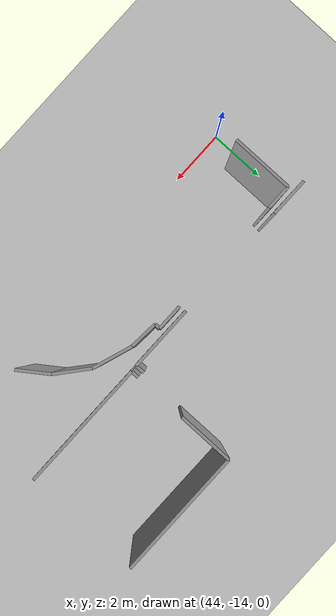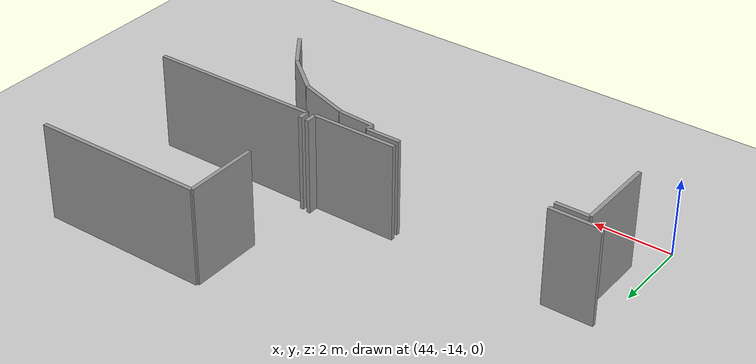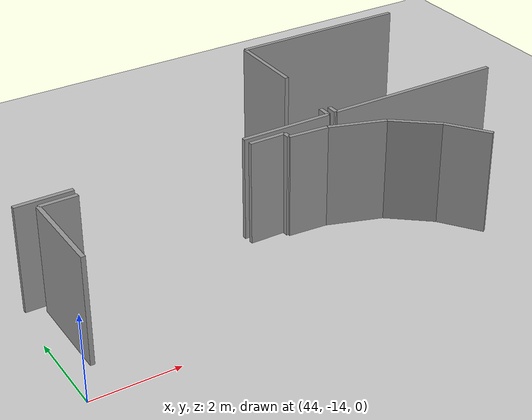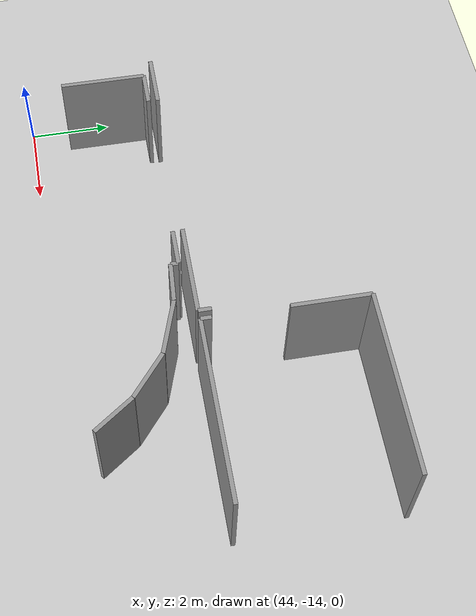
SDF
<sdf version="1.6">
 <world name="default">
  <model name="ground_plane">
   <static>1</static>
   <link name="link">
    <collision name="collision">
     <geometry><plane><normal>0 0 1</normal><size>100 100</size></plane></geometry>
     <surface><friction><ode><mu>100</mu><mu2>50</mu2></ode></friction></surface>
    </collision>
    <visual name="visual">
     <cast_shadows>0</cast_shadows>
     <geometry><plane><normal>0 0 1</normal><size>100 100</size></plane></geometry>
     <material>
      <script><uri>file://media/materials/scripts/gazebo.material</uri><name>Gazebo/Grey</name></script>
     </material>
    </visual>
   </link>
  </model>
  <model name="0510032216_A-40">
   <static>1</static>
   <link name="Wall_110">
    <collision name="Wall_110_Collision">
     <geometry><box><size>0.309264607865 0.1 2.5</size></box></geometry>
     <pose>0.154632303932 0 1.25 0 0 0</pose>
    </collision>
    <visual name="Wall_110_Visual">
     <pose>0.154632303932 0 1.25 0 0 0</pose>
     <geometry><box><size>0.309264607865 0.1 2.5</size></box></geometry>
     <material>
      <script><uri>file://media/materials/scripts/gazebo.material</uri><name>Gazebo/Grey</name></script>
      <ambient>1 1 1 1</ambient>
     </material>
    </visual>
    <pose>120.807439617 -42.4649379503 0 0 0 -1.57079632679</pose>
   </link>
   <link name="Wall_111">
    <collision name="Wall_111_Collision">
     <geometry><box><size>2.20141555845 0.1 2.5</size></box></geometry>
     <pose>1.10070777922 0 1.25 0 0 0</pose>
    </collision>
    <visual name="Wall_111_Visual">
     <pose>1.10070777922 0 1.25 0 0 0</pose>
     <geometry><box><size>2.20141555845 0.1 2.5</size></box></geometry>
     <material>
      <script><uri>file://media/materials/scripts/gazebo.material</uri><name>Gazebo/Grey</name></script>
      <ambient>1 1 1 1</ambient>
     </material>
    </visual>
    <pose>120.807439617 -42.7742025582 0 0 0 3.14159265359</pose>
   </link>
   <link name="Wall_112">
    <collision name="Wall_112_Collision">
     <geometry><box><size>1.30218681563 0.1 2.5</size></box></geometry>
     <pose>0.651093407814 0 1.25 0 0 0</pose>
    </collision>
    <visual name="Wall_112_Visual">
     <pose>0.651093407814 0 1.25 0 0 0</pose>
     <geometry><box><size>1.30218681563 0.1 2.5</size></box></geometry>
     <material>
      <script><uri>file://media/materials/scripts/gazebo.material</uri><name>Gazebo/Grey</name></script>
      <ambient>1 1 1 1</ambient>
     </material>
    </visual>
    <pose>114.66937506 -42.7742025582 0 0 0 3.14159265359</pose>
   </link>
   <link name="Wall_181">
    <collision name="Wall_181_Collision">
     <geometry><box><size>2.08461611705 0.1 2.5</size></box></geometry>
     <pose>1.04230805853 0 1.25 0 0 0</pose>
    </collision>
    <visual name="Wall_181_Visual">
     <pose>1.04230805853 0 1.25 0 0 0</pose>
     <geometry><box><size>2.08461611705 0.1 2.5</size></box></geometry>
     <material>
      <script><uri>file://media/materials/scripts/gazebo.material</uri><name>Gazebo/Grey</name></script>
      <ambient>1 1 1 1</ambient>
     </material>
    </visual>
    <pose>113.807725267 -45.0916558225 0 0 0 1.57079632679</pose>
   </link>
   <link name="Wall_182">
    <collision name="Wall_182_Collision">
     <geometry><box><size>0.846668994192 0.1 2.5</size></box></geometry>
     <pose>0.423334497096 0 1.25 0 0 0</pose>
    </collision>
    <visual name="Wall_182_Visual">
     <pose>0.423334497096 0 1.25 0 0 0</pose>
     <geometry><box><size>0.846668994192 0.1 2.5</size></box></geometry>
     <material>
      <script><uri>file://media/materials/scripts/gazebo.material</uri><name>Gazebo/Grey</name></script>
      <ambient>1 1 1 1</ambient>
     </material>
    </visual>
    <pose>113.807725267 -43.0070397055 0 0 0 0.0</pose>
   </link>
   <link name="Wall_183">
    <collision name="Wall_183_Collision">
     <geometry><box><size>0.8772653696 0.1 2.5</size></box></geometry>
     <pose>0.4386326848 0 1.25 0 0 0</pose>
    </collision>
    <visual name="Wall_183_Visual">
     <pose>0.4386326848 0 1.25 0 0 0</pose>
     <geometry><box><size>0.8772653696 0.1 2.5</size></box></geometry>
     <material>
      <script><uri>file://media/materials/scripts/gazebo.material</uri><name>Gazebo/Grey</name></script>
      <ambient>1 1 1 1</ambient>
     </material>
    </visual>
    <pose>118.628876123 -43.0070397055 0 0 0 0.0</pose>
   </link>
   <link name="Wall_184">
    <collision name="Wall_184_Collision">
     <geometry><box><size>0.182816516964 0.1 2.5</size></box></geometry>
     <pose>0.0914082584822 0 1.25 0 0 0</pose>
    </collision>
    <visual name="Wall_184_Visual">
     <pose>0.0914082584822 0 1.25 0 0 0</pose>
     <geometry><box><size>0.182816516964 0.1 2.5</size></box></geometry>
     <material>
      <script><uri>file://media/materials/scripts/gazebo.material</uri><name>Gazebo/Grey</name></script>
      <ambient>1 1 1 1</ambient>
     </material>
    </visual>
    <pose>119.506141492 -43.0070397055 0 0 0 -1.57079632679</pose>
   </link>
   <link name="Wall_185">
    <collision name="Wall_185_Collision">
     <geometry><box><size>0.953144938797 0.1 2.5</size></box></geometry>
     <pose>0.476572469399 0 1.25 0 0 0</pose>
    </collision>
    <visual name="Wall_185_Visual">
     <pose>0.476572469399 0 1.25 0 0 0</pose>
     <geometry><box><size>0.953144938797 0.1 2.5</size></box></geometry>
     <material>
      <script><uri>file://media/materials/scripts/gazebo.material</uri><name>Gazebo/Grey</name></script>
      <ambient>1 1 1 1</ambient>
     </material>
    </visual>
    <pose>119.506141492 -43.1898562224 0 0 0 -0.0686502942893</pose>
   </link>
   <link name="Wall_186">
    <collision name="Wall_186_Collision">
     <geometry><box><size>1.35658379978 0.1 2.5</size></box></geometry>
     <pose>0.67829189989 0 1.25 0 0 0</pose>
    </collision>
    <visual name="Wall_186_Visual">
     <pose>0.67829189989 0 1.25 0 0 0</pose>
     <geometry><box><size>1.35658379978 0.1 2.5</size></box></geometry>
     <material>
      <script><uri>file://media/materials/scripts/gazebo.material</uri><name>Gazebo/Grey</name></script>
      <ambient>1 1 1 1</ambient>
     </material>
    </visual>
    <pose>120.457041292 -43.2552385184 0 0 0 -0.326781586231</pose>
   </link>
   <link name="Wall_187">
    <collision name="Wall_187_Collision">
     <geometry><box><size>1.22750170599 0.1 2.5</size></box></geometry>
     <pose>0.613750852996 0 1.25 0 0 0</pose>
    </collision>
    <visual name="Wall_187_Visual">
     <pose>0.613750852996 0 1.25 0 0 0</pose>
     <geometry><box><size>1.22750170599 0.1 2.5</size></box></geometry>
     <material>
      <script><uri>file://media/materials/scripts/gazebo.material</uri><name>Gazebo/Grey</name></script>
      <ambient>1 1 1 1</ambient>
     </material>
    </visual>
    <pose>121.741835148 -43.6906973054 0 0 0 -0.692751918483</pose>
   </link>
   <link name="Wall_188">
    <collision name="Wall_188_Collision">
     <geometry><box><size>1.11394471257 0.1 2.5</size></box></geometry>
     <pose>0.556972356284 0 1.25 0 0 0</pose>
    </collision>
    <visual name="Wall_188_Visual">
     <pose>0.556972356284 0 1.25 0 0 0</pose>
     <geometry><box><size>1.11394471257 0.1 2.5</size></box></geometry>
     <material>
      <script><uri>file://media/materials/scripts/gazebo.material</uri><name>Gazebo/Grey</name></script>
      <ambient>1 1 1 1</ambient>
     </material>
    </visual>
    <pose>122.686387152 -44.4746500778 0 0 0 -0.951937955324</pose>
   </link>
   <link name="Wall_201">
    <collision name="Wall_201_Collision">
     <geometry><box><size>4.36474434253 0.1 2.5</size></box></geometry>
     <pose>2.18237217126 0 1.25 0 0 0</pose>
    </collision>
    <visual name="Wall_201_Visual">
     <pose>2.18237217126 0 1.25 0 0 0</pose>
     <geometry><box><size>4.36474434253 0.1 2.5</size></box></geometry>
     <material>
      <script><uri>file://media/materials/scripts/gazebo.material</uri><name>Gazebo/Grey</name></script>
      <ambient>1 1 1 1</ambient>
     </material>
    </visual>
    <pose>125.386739455 -42.7574443774 0 0 0 3.14159265359</pose>
   </link>
   <link name="Wall_202">
    <collision name="Wall_202_Collision">
     <geometry><box><size>0.260767448504 0.1 2.5</size></box></geometry>
     <pose>0.130383724252 0 1.25 0 0 0</pose>
    </collision>
    <visual name="Wall_202_Visual">
     <pose>0.130383724252 0 1.25 0 0 0</pose>
     <geometry><box><size>0.260767448504 0.1 2.5</size></box></geometry>
     <material>
      <script><uri>file://media/materials/scripts/gazebo.material</uri><name>Gazebo/Grey</name></script>
      <ambient>1 1 1 1</ambient>
     </material>
    </visual>
    <pose>121.021995112 -42.7574443774 0 0 0 1.57079632679</pose>
   </link>
   <link name="Wall_203">
    <collision name="Wall_203_Collision">
     <geometry><box><size>1.88339099248 0.1 2.5</size></box></geometry>
     <pose>0.941695496239 0 1.25 0 0 0</pose>
    </collision>
    <visual name="Wall_203_Visual">
     <pose>0.941695496239 0 1.25 0 0 0</pose>
     <geometry><box><size>1.88339099248 0.1 2.5</size></box></geometry>
     <material>
      <script><uri>file://media/materials/scripts/gazebo.material</uri><name>Gazebo/Grey</name></script>
      <ambient>1 1 1 1</ambient>
     </material>
    </visual>
    <pose>121.021995112 -40.7260227886 0 0 0 1.57079632679</pose>
   </link>
   <link name="Wall_204">
    <collision name="Wall_204_Collision">
     <geometry><box><size>4.37617037484 0.1 2.5</size></box></geometry>
     <pose>2.18808518742 0 1.25 0 0 0</pose>
    </collision>
    <visual name="Wall_204_Visual">
     <pose>2.18808518742 0 1.25 0 0 0</pose>
     <geometry><box><size>4.37617037484 0.1 2.5</size></box></geometry>
     <material>
      <script><uri>file://media/materials/scripts/gazebo.material</uri><name>Gazebo/Grey</name></script>
      <ambient>1 1 1 1</ambient>
     </material>
    </visual>
    <pose>121.021995112 -38.8426317961 0 0 0 0.0</pose>
   </link>
   <pose>-69.25 32.0461944965 0 0 0 0</pose>
  </model>
 </world>
</sdf>
